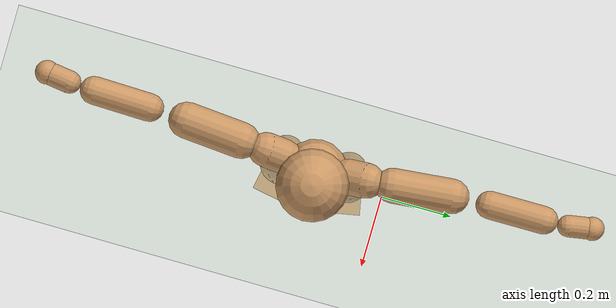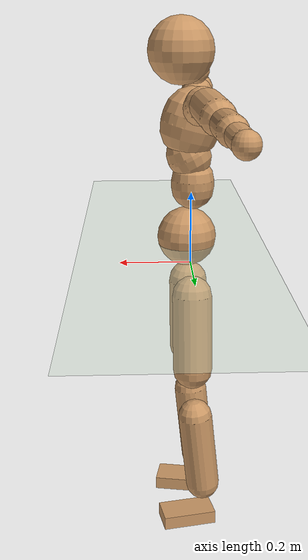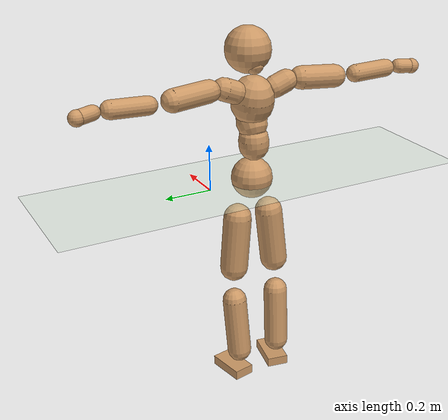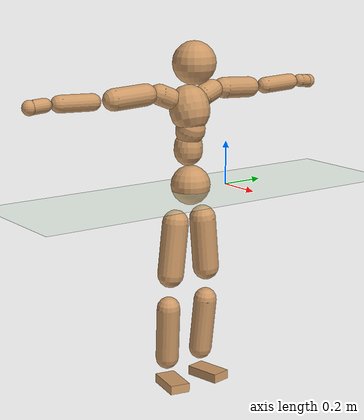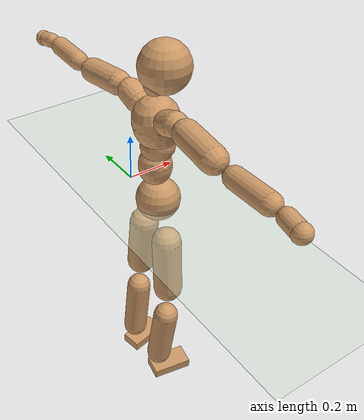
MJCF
<mujoco model="humanoid">
  <compiler coordinate="local"/>
  <default>
    <joint damping="0.0" armature="0.01" stiffness="0.0" limited="true"/>
    <geom conaffinity="1" condim="3" contype="7" margin="0.001" rgba="0.8 0.6 .4 1"/>
  </default>
  <asset>
    <texture type="skybox" builtin="gradient" rgb1=".4 .5 .6" rgb2="0 0 0" width="100" height="100"/>
    <texture builtin="flat" height="1278" mark="cross" markrgb="1 1 1" name="texgeom" random="0.01" rgb1="0.8 0.6 0.4" rgb2="0.8 0.6 0.4" type="cube" width="127"/>
    <texture builtin="checker" height="100" name="texplane" rgb1="0 0 0" rgb2="0.8 0.8 0.8" type="2d" width="100"/>
    <material name="MatPlane" reflectance="0.5" shininess="1" specular="1" texrepeat="60 60" texture="texplane"/>
    <material name="geom" texture="texgeom" texuniform="true"/>
  </asset>
  <worldbody>
    <light cutoff="100" diffuse="1 1 1" dir="-0 0 -1.3" directional="true" exponent="1" pos="0 0 1.3" specular=".1 .1 .1"/>
    <geom conaffinity="1" condim="3" name="floor" pos="0 0 0" rgba="0.8 0.9 0.8 1" size="100 100 .2" type="plane" material="MatPlane"/>
    <body name="Pelvis" pos="-0.0005 -0.1971 0.0215">
      <freejoint name="Pelvis"/>
      <geom type="sphere" contype="1" conaffinity="1" density="500" size="0.0891" pos="0.0000 0.0000 0.0000" name="Pelvis"/>
      <body name="L_Hip" pos="-0.0125 0.0702 -0.0886">
        <joint name="L_Hip_x" type="hinge" pos="0 0 0" axis="1 0 0" stiffness="800" damping="80" armature="0.02" range="-180.0000 180.0000"/>
        <joint name="L_Hip_y" type="hinge" pos="0 0 0" axis="0 1 0" stiffness="800" damping="80" armature="0.02" range="-180.0000 180.0000"/>
        <joint name="L_Hip_z" type="hinge" pos="0 0 0" axis="0 0 1" stiffness="800" damping="80" armature="0.02" range="-180.0000 180.0000"/>
        <geom type="capsule" contype="1" conaffinity="1" density="500" fromto="-0.0005 0.0072 -0.0782 -0.0022 0.0288 -0.3126" size="0.0605" name="L_Hip"/>
        <body name="L_Knee" pos="-0.0027 0.0359 -0.3908">
          <joint name="L_Knee_x" type="hinge" pos="0 0 0" axis="1 0 0" stiffness="800" damping="80" armature="0.02" range="-180.0000 180.0000"/>
          <joint name="L_Knee_y" type="hinge" pos="0 0 0" axis="0 1 0" stiffness="800" damping="80" armature="0.02" range="-180.0000 180.0000"/>
          <joint name="L_Knee_z" type="hinge" pos="0 0 0" axis="0 0 1" stiffness="800" damping="80" armature="0.02" range="-180.0000 180.0000"/>
          <geom type="capsule" contype="1" conaffinity="1" density="500" fromto="-0.0089 -0.0025 -0.0825 -0.0357 -0.0100 -0.3301" size="0.0529" name="L_Knee"/>
          <body name="L_Ankle" pos="-0.0447 -0.0125 -0.4127">
            <joint name="L_Ankle_x" type="hinge" pos="0 0 0" axis="1 0 0" stiffness="800" damping="80" armature="0.02" range="-180.0000 180.0000"/>
            <joint name="L_Ankle_y" type="hinge" pos="0 0 0" axis="0 1 0" stiffness="800" damping="80" armature="0.02" range="-180.0000 180.0000"/>
            <joint name="L_Ankle_z" type="hinge" pos="0 0 0" axis="0 0 1" stiffness="800" damping="80" armature="0.02" range="-180.0000 180.0000"/>
            <geom type="box" contype="1" conaffinity="1" density="500" pos="0.0593 0.0113 -0.0289" size="0.0841 0.0451 0.021" quat="0.9955 0.0000 0.0000 0.0943" name="L_Ankle"/>
            <body name="L_Toe" pos="0.1186 0.0227 -0.0578">
              <joint name="L_Toe_x" type="hinge" pos="0 0 0" axis="1 0 0" stiffness="500" damping="50" armature="0.02" range="-180.0000 180.0000"/>
              <joint name="L_Toe_y" type="hinge" pos="0 0 0" axis="0 1 0" stiffness="500" damping="50" armature="0.02" range="-180.0000 180.0000"/>
              <joint name="L_Toe_z" type="hinge" pos="0 0 0" axis="0 0 1" stiffness="500" damping="50" armature="0.02" range="-180.0000 180.0000"/>
              <geom type="box" contype="1" conaffinity="1" density="500" pos="0.0000 0.0000 0.0284" size="0.0009 0.0023 0.001" quat="0.9949 0.0000 0.0000 0.1007" name="L_Toe"/>
            </body>
          </body>
        </body>
      </body>
      <body name="R_Hip" pos="-0.0083 -0.068 -0.0873">
        <joint name="R_Hip_x" type="hinge" pos="0 0 0" axis="1 0 0" stiffness="800" damping="80" armature="0.02" range="-180.0000 180.0000"/>
        <joint name="R_Hip_y" type="hinge" pos="0 0 0" axis="0 1 0" stiffness="800" damping="80" armature="0.02" range="-180.0000 180.0000"/>
        <joint name="R_Hip_z" type="hinge" pos="0 0 0" axis="0 0 1" stiffness="800" damping="80" armature="0.02" range="-180.0000 180.0000"/>
        <geom type="capsule" contype="1" conaffinity="1" density="500" fromto="-0.0011 -0.0084 -0.0795 -0.0045 -0.0335 -0.3179" size="0.0597" name="R_Hip"/>
        <body name="R_Knee" pos="-0.0056 -0.0419 -0.3974">
          <joint name="R_Knee_x" type="hinge" pos="0 0 0" axis="1 0 0" stiffness="800" damping="80" armature="0.02" range="-180.0000 180.0000"/>
          <joint name="R_Knee_y" type="hinge" pos="0 0 0" axis="0 1 0" stiffness="800" damping="80" armature="0.02" range="-180.0000 180.0000"/>
          <joint name="R_Knee_z" type="hinge" pos="0 0 0" axis="0 0 1" stiffness="800" damping="80" armature="0.02" range="-180.0000 180.0000"/>
          <geom type="capsule" contype="1" conaffinity="1" density="500" fromto="-0.0085 0.0031 -0.0826 -0.0340 0.0125 -0.3303" size="0.0532" name="R_Knee"/>
          <body name="R_Ankle" pos="-0.0425 0.0156 -0.4129">
            <joint name="R_Ankle_x" type="hinge" pos="0 0 0" axis="1 0 0" stiffness="800" damping="80" armature="0.02" range="-180.0000 180.0000"/>
            <joint name="R_Ankle_y" type="hinge" pos="0 0 0" axis="0 1 0" stiffness="800" damping="80" armature="0.02" range="-180.0000 180.0000"/>
            <joint name="R_Ankle_z" type="hinge" pos="0 0 0" axis="0 0 1" stiffness="800" damping="80" armature="0.02" range="-180.0000 180.0000"/>
            <geom type="box" contype="1" conaffinity="1" density="500" pos="0.0611 -0.0112 -0.0247" size="0.0858 0.0464 0.0206" quat="0.9959 0.0000 0.0000 -0.0905" name="R_Ankle"/>
            <body name="R_Toe" pos="0.1222 -0.0224 -0.0493">
              <joint name="R_Toe_x" type="hinge" pos="0 0 0" axis="1 0 0" stiffness="500" damping="50" armature="0.02" range="-180.0000 180.0000"/>
              <joint name="R_Toe_y" type="hinge" pos="0 0 0" axis="0 1 0" stiffness="500" damping="50" armature="0.02" range="-180.0000 180.0000"/>
              <joint name="R_Toe_z" type="hinge" pos="0 0 0" axis="0 0 1" stiffness="500" damping="50" armature="0.02" range="-180.0000 180.0000"/>
              <geom type="box" contype="1" conaffinity="1" density="500" pos="0.0000 0.0000 0.0265" size="0.0009 0.0023 0.0011" quat="0.9967 0.0000 0.0000 -0.0813" name="R_Toe"/>
            </body>
          </body>
        </body>
      </body>
      <body name="Torso" pos="-0.017 -0.0021 0.101">
        <joint name="Torso_x" type="hinge" pos="0 0 0" axis="1 0 0" stiffness="1000" damping="100" armature="0.02" range="-180.0000 180.0000"/>
        <joint name="Torso_y" type="hinge" pos="0 0 0" axis="0 1 0" stiffness="1000" damping="100" armature="0.02" range="-180.0000 180.0000"/>
        <joint name="Torso_z" type="hinge" pos="0 0 0" axis="0 0 1" stiffness="1000" damping="100" armature="0.02" range="-180.0000 180.0000"/>
        <geom type="capsule" contype="1" conaffinity="1" density="500" fromto="0.0002 0.0019 0.0735 0.0001 0.0012 0.0490" size="0.0643" name="Torso"/>
        <body name="Spine" pos="0.0003 0.0031 0.1224">
          <joint name="Spine_x" type="hinge" pos="0 0 0" axis="1 0 0" stiffness="1000" damping="100" armature="0.02" range="-180.0000 180.0000"/>
          <joint name="Spine_y" type="hinge" pos="0 0 0" axis="0 1 0" stiffness="1000" damping="100" armature="0.02" range="-180.0000 180.0000"/>
          <joint name="Spine_z" type="hinge" pos="0 0 0" axis="0 0 1" stiffness="1000" damping="100" armature="0.02" range="-180.0000 180.0000"/>
          <geom type="capsule" contype="1" conaffinity="1" density="500" fromto="0.0145 0.0010 0.0286 0.0097 0.0007 0.0190" size="0.0658" name="Spine"/>
          <body name="Chest" pos="0.0242 0.0017 0.0476">
            <joint name="Chest_x" type="hinge" pos="0 0 0" axis="1 0 0" stiffness="1000" damping="100" armature="0.02" range="-180.0000 180.0000"/>
            <joint name="Chest_y" type="hinge" pos="0 0 0" axis="0 1 0" stiffness="1000" damping="100" armature="0.02" range="-180.0000 180.0000"/>
            <joint name="Chest_z" type="hinge" pos="0 0 0" axis="0 0 1" stiffness="1000" damping="100" armature="0.02" range="-180.0000 180.0000"/>
            <geom type="capsule" contype="1" conaffinity="1" density="500" fromto="-0.0233 -0.0011 0.0872 -0.0155 -0.0008 0.0581" size="0.09" name="Chest"/>
            <body name="Neck" pos="-0.042 -0.0034 0.208">
              <joint name="Neck_x" type="hinge" pos="0 0 0" axis="1 0 0" stiffness="500" damping="50" armature="0.02" range="-180.0000 180.0000"/>
              <joint name="Neck_y" type="hinge" pos="0 0 0" axis="0 1 0" stiffness="500" damping="50" armature="0.02" range="-180.0000 180.0000"/>
              <joint name="Neck_z" type="hinge" pos="0 0 0" axis="0 0 1" stiffness="500" damping="50" armature="0.02" range="-180.0000 180.0000"/>
              <geom type="capsule" contype="1" conaffinity="1" density="500" fromto="0.0107 0.0011 0.0134 0.0429 0.0043 0.0536" size="0.0399" name="Neck"/>
              <body name="Head" pos="0.0536 0.0054 0.067">
                <joint name="Head_x" type="hinge" pos="0 0 0" axis="1 0 0" stiffness="500" damping="50" armature="0.02" range="-180.0000 180.0000"/>
                <joint name="Head_y" type="hinge" pos="0 0 0" axis="0 1 0" stiffness="500" damping="50" armature="0.02" range="-180.0000 180.0000"/>
                <joint name="Head_z" type="hinge" pos="0 0 0" axis="0 0 1" stiffness="500" damping="50" armature="0.02" range="-180.0000 180.0000"/>
                <geom type="sphere" contype="1" conaffinity="1" density="500" size="0.0969" pos="0.0000 0.0000 0.0000" name="Head"/>
              </body>
            </body>
            <body name="L_Thorax" pos="-0.035 0.0717 0.1147">
              <joint name="L_Thorax_x" type="hinge" pos="0 0 0" axis="1 0 0" stiffness="500" damping="50" armature="0.02" range="-180.0000 180.0000"/>
              <joint name="L_Thorax_y" type="hinge" pos="0 0 0" axis="0 1 0" stiffness="500" damping="50" armature="0.02" range="-180.0000 180.0000"/>
              <joint name="L_Thorax_z" type="hinge" pos="0 0 0" axis="0 0 1" stiffness="500" damping="50" armature="0.02" range="-180.0000 180.0000"/>
              <geom type="capsule" contype="1" conaffinity="1" density="500" fromto="-0.0011 0.0165 0.0067 -0.0044 0.0661 0.0267" size="0.0479" name="L_Thorax"/>
              <body name="L_Shoulder" pos="-0.0055 0.0827 0.0333">
                <joint name="L_Shoulder_x" type="hinge" pos="0 0 0" axis="1 0 0" stiffness="500" damping="50" armature="0.02" range="-720.0000 720.0000"/>
                <joint name="L_Shoulder_y" type="hinge" pos="0 0 0" axis="0 1 0" stiffness="500" damping="50" armature="0.02" range="-720.0000 720.0000"/>
                <joint name="L_Shoulder_z" type="hinge" pos="0 0 0" axis="0 0 1" stiffness="500" damping="50" armature="0.02" range="-720.0000 720.0000"/>
                <geom type="capsule" contype="1" conaffinity="1" density="500" fromto="-0.0053 0.0531 -0.0033 -0.0212 0.2123 -0.0132" size="0.0474" name="L_Shoulder"/>
                <body name="L_Elbow" pos="-0.0265 0.2653 -0.0165">
                  <joint name="L_Elbow_x" type="hinge" pos="0 0 0" axis="1 0 0" stiffness="500" damping="50" armature="0.02" range="-720.0000 720.0000"/>
                  <joint name="L_Elbow_y" type="hinge" pos="0 0 0" axis="0 1 0" stiffness="500" damping="50" armature="0.02" range="-720.0000 720.0000"/>
                  <joint name="L_Elbow_z" type="hinge" pos="0 0 0" axis="0 0 1" stiffness="500" damping="50" armature="0.02" range="-720.0000 720.0000"/>
                  <geom type="capsule" contype="1" conaffinity="1" density="500" fromto="-0.0002 0.0501 0.0021 -0.0009 0.2004 0.0084" size="0.0375" name="L_Elbow"/>
                  <body name="L_Wrist" pos="-0.0011 0.2506 0.0106">
                    <joint name="L_Wrist_x" type="hinge" pos="0 0 0" axis="1 0 0" stiffness="300" damping="30" armature="0.02" range="-180.0000 180.0000"/>
                    <joint name="L_Wrist_y" type="hinge" pos="0 0 0" axis="0 1 0" stiffness="300" damping="30" armature="0.02" range="-180.0000 180.0000"/>
                    <joint name="L_Wrist_z" type="hinge" pos="0 0 0" axis="0 0 1" stiffness="300" damping="30" armature="0.02" range="-180.0000 180.0000"/>
                    <geom type="capsule" contype="1" conaffinity="1" density="500" fromto="-0.0027 0.0160 -0.0020 -0.0107 0.0640 -0.0079" size="0.0298" name="L_Wrist"/>
                    <body name="L_Hand" pos="-0.0134 0.08 -0.0099">
                      <joint name="L_Hand_x" type="hinge" pos="0 0 0" axis="1 0 0" stiffness="300" damping="30" armature="0.02" range="-180.0000 180.0000"/>
                      <joint name="L_Hand_y" type="hinge" pos="0 0 0" axis="0 1 0" stiffness="300" damping="30" armature="0.02" range="-180.0000 180.0000"/>
                      <joint name="L_Hand_z" type="hinge" pos="0 0 0" axis="0 0 1" stiffness="300" damping="30" armature="0.02" range="-180.0000 180.0000"/>
                      <geom type="sphere" contype="1" conaffinity="1" density="500" size="0.0321" pos="0.0000 0.0000 0.0000" name="L_Hand"/>
                    </body>
                  </body>
                </body>
              </body>
            </body>
            <body name="R_Thorax" pos="-0.0394 -0.0741 0.1132">
              <joint name="R_Thorax_x" type="hinge" pos="0 0 0" axis="1 0 0" stiffness="500" damping="50" armature="0.02" range="-180.0000 180.0000"/>
              <joint name="R_Thorax_y" type="hinge" pos="0 0 0" axis="0 1 0" stiffness="500" damping="50" armature="0.02" range="-180.0000 180.0000"/>
              <joint name="R_Thorax_z" type="hinge" pos="0 0 0" axis="0 0 1" stiffness="500" damping="50" armature="0.02" range="-180.0000 180.0000"/>
              <geom type="capsule" contype="1" conaffinity="1" density="500" fromto="-0.0015 -0.0171 0.0071 -0.0060 -0.0686 0.0282" size="0.0469" name="R_Thorax"/>
              <body name="R_Shoulder" pos="-0.0075 -0.0857 0.0353">
                <joint name="R_Shoulder_x" type="hinge" pos="0 0 0" axis="1 0 0" stiffness="500" damping="50" armature="0.02" range="-720.0000 720.0000"/>
                <joint name="R_Shoulder_y" type="hinge" pos="0 0 0" axis="0 1 0" stiffness="500" damping="50" armature="0.02" range="-720.0000 720.0000"/>
                <joint name="R_Shoulder_z" type="hinge" pos="0 0 0" axis="0 0 1" stiffness="500" damping="50" armature="0.02" range="-720.0000 720.0000"/>
                <geom type="capsule" contype="1" conaffinity="1" density="500" fromto="-0.0040 -0.0517 -0.0034 -0.0160 -0.2070 -0.0136" size="0.0491" name="R_Shoulder"/>
                <body name="R_Elbow" pos="-0.02 -0.2587 -0.017">
                  <joint name="R_Elbow_x" type="hinge" pos="0 0 0" axis="1 0 0" stiffness="500" damping="50" armature="0.02" range="-720.0000 720.0000"/>
                  <joint name="R_Elbow_y" type="hinge" pos="0 0 0" axis="0 1 0" stiffness="500" damping="50" armature="0.02" range="-720.0000 720.0000"/>
                  <joint name="R_Elbow_z" type="hinge" pos="0 0 0" axis="0 0 1" stiffness="500" damping="50" armature="0.02" range="-720.0000 720.0000"/>
                  <geom type="capsule" contype="1" conaffinity="1" density="500" fromto="-0.0011 -0.0518 0.0016 -0.0045 -0.2070 0.0066" size="0.0378" name="R_Elbow"/>
                  <body name="R_Wrist" pos="-0.0057 -0.2588 0.0082">
                    <joint name="R_Wrist_x" type="hinge" pos="0 0 0" axis="1 0 0" stiffness="300" damping="30" armature="0.02" range="-180.0000 180.0000"/>
                    <joint name="R_Wrist_y" type="hinge" pos="0 0 0" axis="0 1 0" stiffness="300" damping="30" armature="0.02" range="-180.0000 180.0000"/>
                    <joint name="R_Wrist_z" type="hinge" pos="0 0 0" axis="0 0 1" stiffness="300" damping="30" armature="0.02" range="-180.0000 180.0000"/>
                    <geom type="capsule" contype="1" conaffinity="1" density="500" fromto="-0.0021 -0.0163 -0.0015 -0.0085 -0.0651 -0.0060" size="0.0308" name="R_Wrist"/>
                    <body name="R_Hand" pos="-0.0106 -0.0814 -0.0075">
                      <joint name="R_Hand_x" type="hinge" pos="0 0 0" axis="1 0 0" stiffness="300" damping="30" armature="0.02" range="-180.0000 180.0000"/>
                      <joint name="R_Hand_y" type="hinge" pos="0 0 0" axis="0 1 0" stiffness="300" damping="30" armature="0.02" range="-180.0000 180.0000"/>
                      <joint name="R_Hand_z" type="hinge" pos="0 0 0" axis="0 0 1" stiffness="300" damping="30" armature="0.02" range="-180.0000 180.0000"/>
                      <geom type="sphere" contype="1" conaffinity="1" density="500" size="0.0326" pos="0.0000 0.0000 0.0000" name="R_Hand"/>
                    </body>
                  </body>
                </body>
              </body>
            </body>
          </body>
        </body>
      </body>
    </body>
  </worldbody>
  <actuator>
    <motor name="L_Hip_x" joint="L_Hip_x" gear="500"/>
    <motor name="L_Hip_y" joint="L_Hip_y" gear="500"/>
    <motor name="L_Hip_z" joint="L_Hip_z" gear="500"/>
    <motor name="L_Knee_x" joint="L_Knee_x" gear="500"/>
    <motor name="L_Knee_y" joint="L_Knee_y" gear="500"/>
    <motor name="L_Knee_z" joint="L_Knee_z" gear="500"/>
    <motor name="L_Ankle_x" joint="L_Ankle_x" gear="500"/>
    <motor name="L_Ankle_y" joint="L_Ankle_y" gear="500"/>
    <motor name="L_Ankle_z" joint="L_Ankle_z" gear="500"/>
    <motor name="L_Toe_x" joint="L_Toe_x" gear="500"/>
    <motor name="L_Toe_y" joint="L_Toe_y" gear="500"/>
    <motor name="L_Toe_z" joint="L_Toe_z" gear="500"/>
    <motor name="R_Hip_x" joint="R_Hip_x" gear="500"/>
    <motor name="R_Hip_y" joint="R_Hip_y" gear="500"/>
    <motor name="R_Hip_z" joint="R_Hip_z" gear="500"/>
    <motor name="R_Knee_x" joint="R_Knee_x" gear="500"/>
    <motor name="R_Knee_y" joint="R_Knee_y" gear="500"/>
    <motor name="R_Knee_z" joint="R_Knee_z" gear="500"/>
    <motor name="R_Ankle_x" joint="R_Ankle_x" gear="500"/>
    <motor name="R_Ankle_y" joint="R_Ankle_y" gear="500"/>
    <motor name="R_Ankle_z" joint="R_Ankle_z" gear="500"/>
    <motor name="R_Toe_x" joint="R_Toe_x" gear="500"/>
    <motor name="R_Toe_y" joint="R_Toe_y" gear="500"/>
    <motor name="R_Toe_z" joint="R_Toe_z" gear="500"/>
    <motor name="Torso_x" joint="Torso_x" gear="500"/>
    <motor name="Torso_y" joint="Torso_y" gear="500"/>
    <motor name="Torso_z" joint="Torso_z" gear="500"/>
    <motor name="Spine_x" joint="Spine_x" gear="500"/>
    <motor name="Spine_y" joint="Spine_y" gear="500"/>
    <motor name="Spine_z" joint="Spine_z" gear="500"/>
    <motor name="Chest_x" joint="Chest_x" gear="500"/>
    <motor name="Chest_y" joint="Chest_y" gear="500"/>
    <motor name="Chest_z" joint="Chest_z" gear="500"/>
    <motor name="Neck_x" joint="Neck_x" gear="500"/>
    <motor name="Neck_y" joint="Neck_y" gear="500"/>
    <motor name="Neck_z" joint="Neck_z" gear="500"/>
    <motor name="Head_x" joint="Head_x" gear="500"/>
    <motor name="Head_y" joint="Head_y" gear="500"/>
    <motor name="Head_z" joint="Head_z" gear="500"/>
    <motor name="L_Thorax_x" joint="L_Thorax_x" gear="500"/>
    <motor name="L_Thorax_y" joint="L_Thorax_y" gear="500"/>
    <motor name="L_Thorax_z" joint="L_Thorax_z" gear="500"/>
    <motor name="L_Shoulder_x" joint="L_Shoulder_x" gear="500"/>
    <motor name="L_Shoulder_y" joint="L_Shoulder_y" gear="500"/>
    <motor name="L_Shoulder_z" joint="L_Shoulder_z" gear="500"/>
    <motor name="L_Elbow_x" joint="L_Elbow_x" gear="500"/>
    <motor name="L_Elbow_y" joint="L_Elbow_y" gear="500"/>
    <motor name="L_Elbow_z" joint="L_Elbow_z" gear="500"/>
    <motor name="L_Wrist_x" joint="L_Wrist_x" gear="500"/>
    <motor name="L_Wrist_y" joint="L_Wrist_y" gear="500"/>
    <motor name="L_Wrist_z" joint="L_Wrist_z" gear="500"/>
    <motor name="L_Hand_x" joint="L_Hand_x" gear="500"/>
    <motor name="L_Hand_y" joint="L_Hand_y" gear="500"/>
    <motor name="L_Hand_z" joint="L_Hand_z" gear="500"/>
    <motor name="R_Thorax_x" joint="R_Thorax_x" gear="500"/>
    <motor name="R_Thorax_y" joint="R_Thorax_y" gear="500"/>
    <motor name="R_Thorax_z" joint="R_Thorax_z" gear="500"/>
    <motor name="R_Shoulder_x" joint="R_Shoulder_x" gear="500"/>
    <motor name="R_Shoulder_y" joint="R_Shoulder_y" gear="500"/>
    <motor name="R_Shoulder_z" joint="R_Shoulder_z" gear="500"/>
    <motor name="R_Elbow_x" joint="R_Elbow_x" gear="500"/>
    <motor name="R_Elbow_y" joint="R_Elbow_y" gear="500"/>
    <motor name="R_Elbow_z" joint="R_Elbow_z" gear="500"/>
    <motor name="R_Wrist_x" joint="R_Wrist_x" gear="500"/>
    <motor name="R_Wrist_y" joint="R_Wrist_y" gear="500"/>
    <motor name="R_Wrist_z" joint="R_Wrist_z" gear="500"/>
    <motor name="R_Hand_x" joint="R_Hand_x" gear="500"/>
    <motor name="R_Hand_y" joint="R_Hand_y" gear="500"/>
    <motor name="R_Hand_z" joint="R_Hand_z" gear="500"/>
  </actuator>
  <contact>
    <exclude body1="Torso" body2="Chest"/>
    <exclude body1="Head" body2="Chest"/>
    <exclude body1="R_Knee" body2="R_Toe"/>
    <exclude body1="R_Knee" body2="L_Ankle"/>
    <exclude body1="R_Knee" body2="L_Toe"/>
    <exclude body1="L_Knee" body2="L_Toe"/>
    <exclude body1="L_Knee" body2="R_Ankle"/>
    <exclude body1="L_Knee" body2="R_Toe"/>
    <exclude body1="L_Shoulder" body2="Chest"/>
    <exclude body1="R_Shoulder" body2="Chest"/>
  </contact>
  <sensor/>
  <size njmax="700" nconmax="700"/>
</mujoco>
